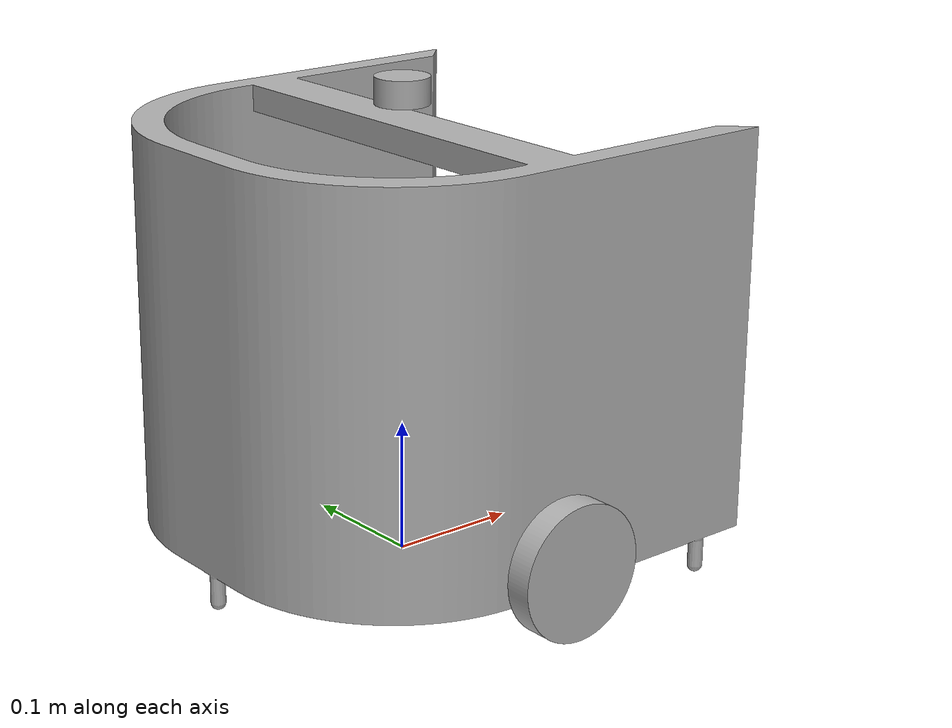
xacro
<?xml version="1.0" ?>
<robot name="My_Robot" xmlns:xacro="http://www.ros.org/wiki/xacro">

<xacro:include filename="$(find my_robot_description)/urdf/materials.xacro" />
<xacro:include filename="$(find my_robot_description)/urdf/My_Robot.ros2control" />
<xacro:include filename="$(find my_robot_description)/urdf/My_Robot.gazebo" />

<link name="base_link">
  <inertial>
  <origin xyz="0 0 0.1" rpy="0 0 0"/>
  <mass value="8.0"/>
  <inertia ixx="0.05" iyy="0.04" izz="0.06" ixy="0" iyz="0" ixz="0"/>
  </inertial>

  <visual>
    <origin xyz="0 0 0" rpy="0 0 0"/>
    <geometry>
      <mesh filename="file://$(find my_robot_description)/meshes/base_link.stl" scale="0.001 0.001 0.001"/>
    </geometry>
    <material name="silver"/>
  </visual>
  <collision>
    <origin xyz="0 0 0" rpy="0 0 0"/>
    <geometry>
      <mesh filename="file://$(find my_robot_description)/meshes/base_link.stl" scale="0.001 0.001 0.001"/>
    </geometry>
  </collision>
</link>

<link name="left_wheel_1">
  <inertial>
    <origin xyz="3.20576898360514e-17 0.009999999999999981 -1.3877787807814457e-17" rpy="0 0 0"/>
    <mass value="0.14608405839192537"/>
    <inertia ixx="9.6e-05" iyy="0.000183" izz="9.6e-05" ixy="0.0" iyz="-0.0" ixz="-0.0"/>
  </inertial>
  <visual>
    <origin xyz="-0.0 -0.176 -0.05" rpy="0 0 0"/>
    <geometry>
      <mesh filename="file://$(find my_robot_description)/meshes/left_wheel_1.stl" scale="0.001 0.001 0.001"/>
    </geometry>
    <material name="silver"/>
  </visual>
  <collision>
    <origin xyz="-0.0 -0.176 -0.05" rpy="0 0 0"/>
    <geometry>
      <mesh filename="file://$(find my_robot_description)/meshes/left_wheel_1.stl" scale="0.001 0.001 0.001"/>
    </geometry>
  </collision>
</link>

<link name="right_wheel_1">
  <inertial>
    <origin xyz="-4.662936703425657e-17 -0.010000000000000037 -1.3877787807814457e-17" rpy="0 0 0"/>
    <mass value="0.14608405839192537"/>
    <inertia ixx="9.6e-05" iyy="0.000183" izz="9.6e-05" ixy="-0.0" iyz="-0.0" ixz="-0.0"/>
  </inertial>
  <visual>
    <origin xyz="0.0 0.176 -0.05" rpy="0 0 0"/>
    <geometry>
      <mesh filename="file://$(find my_robot_description)/meshes/right_wheel_1.stl" scale="0.001 0.001 0.001"/>
    </geometry>
    <material name="silver"/>
  </visual>
  <collision>
    <origin xyz="0.0 0.176 -0.05" rpy="0 0 0"/>
    <geometry>
      <mesh filename="file://$(find my_robot_description)/meshes/right_wheel_1.stl" scale="0.001 0.001 0.001"/>
    </geometry>
  </collision>
</link>

<link name="lidar_1">
  <inertial>
    <origin xyz="-2.8271597168564596e-18 0.0 0.010000000000000009" rpy="0 0 0"/>
    <mass value="0.197292018645439"/>
    <inertia ixx="2.6e-05" iyy="2.6e-05" izz="3.9e-05" ixy="0.0" iyz="-0.0" ixz="-0.0"/>
  </inertial>
  <visual>
    <origin xyz="-0.0 -0.0 -0.33" rpy="0 0 0"/>
    <geometry>
      <mesh filename="file://$(find my_robot_description)/meshes/lidar_1.stl" scale="0.001 0.001 0.001"/>
    </geometry>
    <material name="silver"/>
  </visual>
  <collision>
    <origin xyz="-0.0 -0.0 -0.33" rpy="0 0 0"/>
    <geometry>
      <mesh filename="file://$(find my_robot_description)/meshes/lidar_1.stl" scale="0.001 0.001 0.001"/>
    </geometry>
  </collision>
</link>

<joint name="left_wheel_joint" type="continuous">
  <origin xyz="0.0 0.176 0.05" rpy="0 0 0"/>
  <parent link="base_link"/>
  <child link="left_wheel_1"/>
  <axis xyz="0.0 1.0 0.0"/>
</joint>

<joint name="right_wheel_joint" type="continuous">
  <origin xyz="0.0 -0.176 0.05" rpy="0 0 0"/>
  <parent link="base_link"/>
  <child link="right_wheel_1"/>
  <axis xyz="0.0 1.0 0.0"/>
</joint>

<joint name="Rigid 7" type="fixed">
  <origin xyz="0.0 0.0 0.34" rpy="0 0 0"/>
  <parent link="base_link"/>
  <child link="lidar_1"/>
</joint>

</robot>

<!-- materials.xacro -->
<robot name="My_Robot" xmlns:xacro="http://www.ros.org/wiki/xacro" >

<material name="silver">
  <color rgba="0.700 0.700 0.700 1.000"/>
</material>

</robot>

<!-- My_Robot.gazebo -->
<robot name="My_Robot" xmlns:xacro="http://www.ros.org/wiki/xacro" >

<xacro:property name="body_color" value="Gazebo/Silver" />

<gazebo reference="base_link">
  <material>${body_color}</material>
  <mu1>0.001</mu1>
  <mu2>0.001</mu2>
  <self_collide>true</self_collide>
  <gravity>true</gravity>
</gazebo>

<gazebo reference="left_wheel_1">
  <material>RGBA(1 0 0 1)</material>
  <mu1>1.0</mu1>
  <mu2>1.0</mu2>
  <self_collide>true</self_collide>
</gazebo>

<gazebo reference="right_wheel_1">
  <material>RGBA(0 1 0 1)</material>
  <mu1>1.0</mu1>
  <mu2>1.0</mu2>
  <self_collide>true</self_collide>
</gazebo>

<gazebo reference="lidar_1">
  <material>RGBA(0 0 0.75 1)</material>
  <mu1>0.2</mu1>
  <mu2>0.2</mu2>
  <self_collide>true</self_collide>
</gazebo>

<gazebo>
        <plugin filename="gz-sim-sensors-system" name="gz::sim::systems::Sensors">
            <render_engine>ogre2</render_engine>
        </plugin>

        <plugin filename="gz-sim-joint-state-publisher-system" name="gz::sim::systems::JointStatePublisher">
        <topic>/joint_states</topic>
        </plugin>

      <plugin
        filename="gz-sim-diff-drive-system"
        name="gz::sim::systems::DiffDrive">
        <left_joint>left_wheel_joint</left_joint>
        <right_joint>right_wheel_joint</right_joint>

        <wheel_separation>0.460</wheel_separation>
        <wheel_radius>0.046</wheel_radius>

        <odom_publish_frequency>30</odom_publish_frequency>
        <topic>/cmd_vel</topic>
        <tf_topic>/tf</tf_topic>
        <frame_id>odom</frame_id>
        <odom_topic>odom</odom_topic>
        <child_frame_id>base_link</child_frame_id>
</plugin>
</gazebo>

<gazebo reference="lidar_1">
        <sensor name='gpu_lidar' type='gpu_lidar'>
          <pose>0 0 0 0 0 0</pose>
          <topic>/scan</topic>
          <gz_frame_id>lidar_1</gz_frame_id>
          <update_rate>60</update_rate>
          <lidar>
            <scan>
              <horizontal>
                <samples>1440</samples>
                <resolution>1</resolution>
                <min_angle>-3.14159</min_angle>
                <max_angle> 3.14159</max_angle>
              </horizontal>
              <vertical>
                <samples>1</samples>
                <resolution>1</resolution>
                <min_angle>0.0</min_angle>
                <max_angle>0.0</max_angle>
              </vertical>
            </scan>
            <range>
              <min>0.08</min>
              <max>25.0</max>
              <resolution>0.01</resolution>
            </range>
          </lidar>
          <visualize>true</visualize>
        </sensor>
 </gazebo>

</robot>
